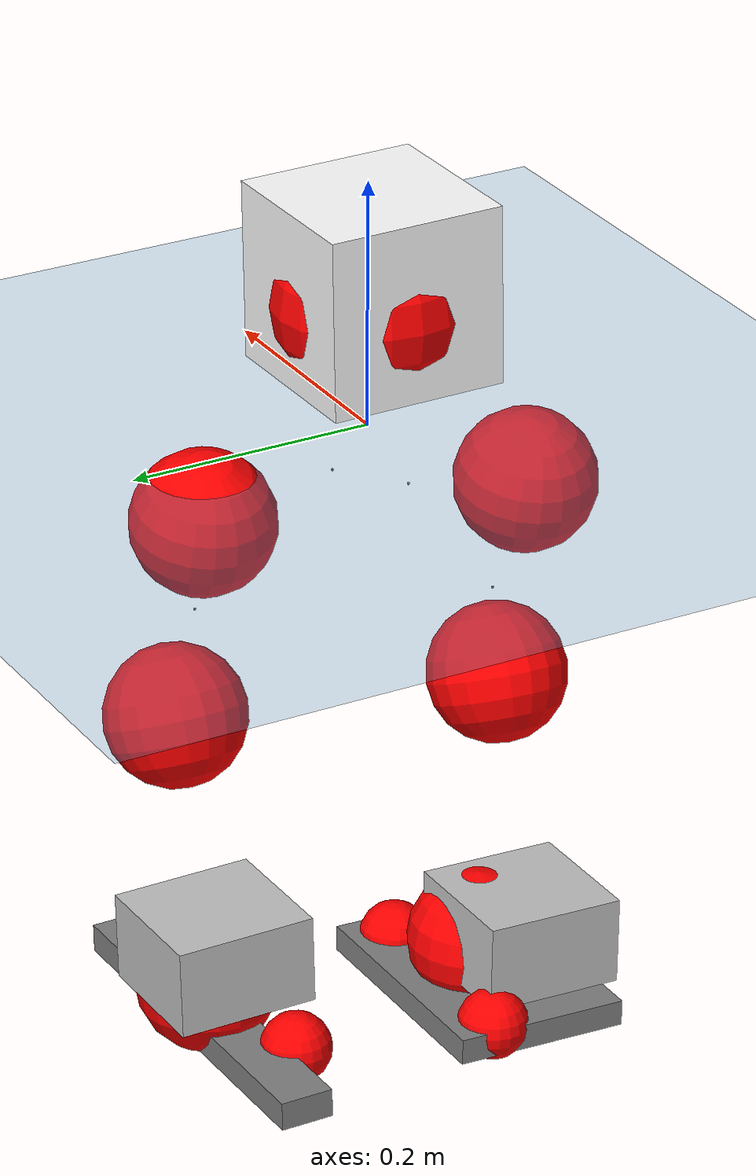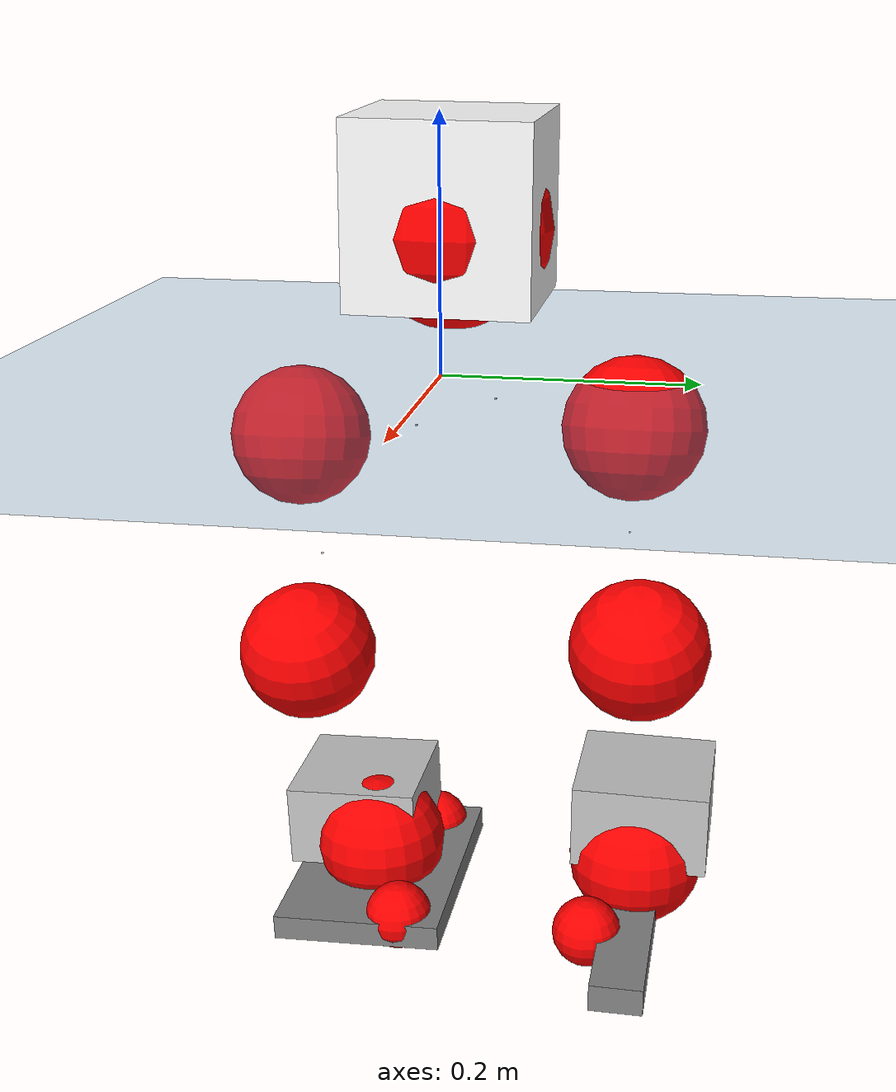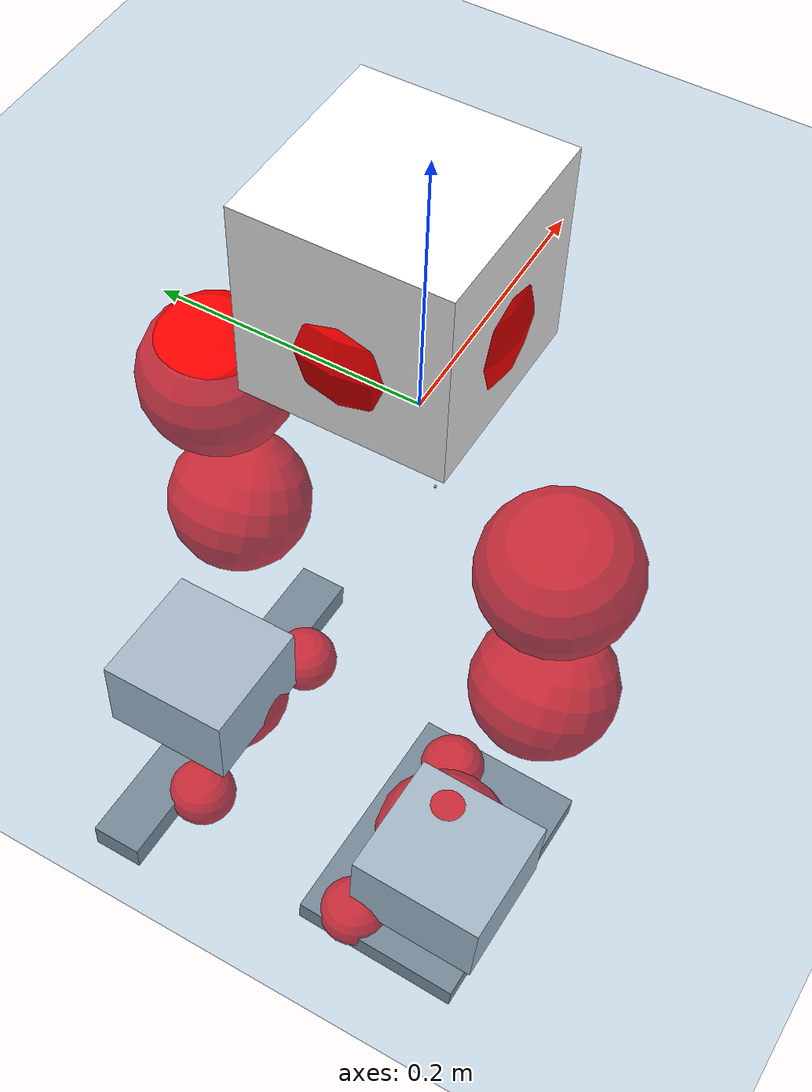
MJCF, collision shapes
<mujoco model="pi_12dof_release_v1">
  <compiler angle="radian" assetdir="assets" balanceinertia="true" inertiafromgeom="false"/>

  <option timestep="0.005" density="1.2" viscosity="2e-05"/>

  <size nkey="1"/>

  <visual>
    <quality shadowsize="8192"/>
    <map shadowclip="0.5"/>
  </visual>

  <default>
    <default class="/">
      <joint armature="0.01" damping="0.01" frictionloss="0.01"/>
      <geom contype="0" conaffinity="0" group="1" solref="-1000 -80"/>
      <site size="0.01 0.005 0.005" group="5"/>
      <general forcelimited="true" biastype="affine" gainprm="20" biasprm="0 -20 -0.5"/>
      <default class="foot">
        <geom size="0.0845 0.036 0.005" type="box" condim="6" group="4" priority="1" friction="0.9 0.2 0.2" solimp="0.015 1 0.005"/>
      </default>
      <default class="reward_collision_sphere">
        <geom group="5" rgba="1 0 0 1"/>
      </default>
    </default>
  </default>

  <asset>
    <texture type="skybox" colorspace="auto" name="//unnamed_texture_0" builtin="gradient" rgb1="0.95 0.95 0.95" rgb2="0.95 0.95 0.95" width="100" height="600"/>
    <texture type="2d" colorspace="auto" name="texplane" builtin="checker" rgb1="0.345 0.575 0.748" rgb2="0.345 0.575 0.748" markrgb="1 1 1" width="512" height="512"/>
    <material name="MatPlane" class="/" texture="texplane" texuniform="true" texrepeat="2 2" specular="0.9"/>
    <mesh name="baselink_1" class="/" file="baselink_1.STL"/>
    <mesh name="r_hip_pitch_link" class="/" file="r_hip_pitch_link.STL"/>
    <mesh name="r_hip_roll_link" class="/" file="r_hip_roll_link.STL"/>
    <mesh name="r_thigh_link" class="/" file="r_thigh_link.STL"/>
    <mesh name="r_calf_link" class="/" file="r_calf_link.STL"/>
    <mesh name="r_ankle_pitch_link" class="/" file="r_ankle_pitch_link.STL"/>
    <mesh name="r_ankle_roll_link" class="/" file="r_ankle_roll_link.STL"/>
    <mesh name="l_hip_pitch_link" class="/" file="l_hip_pitch_link.STL"/>
    <mesh name="l_hip_roll_link" class="/" file="l_hip_roll_link.STL"/>
    <mesh name="l_thigh_link" class="/" file="l_thigh_link.STL"/>
    <mesh name="l_calf_link" class="/" file="l_calf_link.STL"/>
    <mesh name="l_ankle_pitch_link" class="/" file="l_ankle_pitch_link.STL"/>
    <mesh name="l_ankle_roll_link" class="/" file="l_ankle_roll_link.STL"/>
  </asset>

  <worldbody>
    <geom name="floor" class="/" size="100 100 0.125" type="plane" group="0" material="MatPlane"/>
    <light name="toplight_shadow" class="/" pos="0 0 5" dir="0.0990148 0.0990148 -0.990148" type="directional" ambient="0.04 0.04 0.04" diffuse="0.55 0.55 0.55" specular="0.12 0.12 0.12"/>
    <light name="toplight_fill" class="/" pos="0 0 5" dir="0.0990148 0.0990148 -0.990148" type="directional" castshadow="false" ambient="0.04 0.04 0.04" diffuse="0.3 0.3 0.3" specular="0.08 0.08 0.08"/>
    <body name="trunk" pos="-0.0194292 0.00513848 0.0117209" quat="0.99996 -0.00484502 0.00729713 -0.00200557">
      <inertial pos="0.0216214 -0.011493 0.064948" quat="0.679537 0.0328042 -0.00961279 0.732844" mass="6.73851" diaginertia="0.0211591 0.0908407 0.0194971"/>
      <joint name="//unnamed_joint_0" type="free"/>
      <geom name="//unnamed_geom_1" class="/" type="mesh" density="0" rgba="1 1 1 1" mesh="baselink_1"/>
      <geom name="//unnamed_geom_2" class="/" size="0.0712799 0.0712799 0.0712799" pos="0 0 0.115288" type="box" rgba="1 1 1 1"/>
      <geom name="//unnamed_geom_3" class="reward_collision_sphere" size="0.0784079" pos="0 0 0.100877"/>
      <site name="imu" class="/" pos="0.0270452 -0.0632221 -0.0876269" size="0.014256"/>
      <camera name="track" class="/" pos="0 -3.27108 0" quat="0.707107 0.707107 0 0" mode="trackcom"/>
      <camera name="ego_camera" class="/" pos="0.0900115 0 0.259397" quat="-0.5 -0.5 0.5 0.5"/>
      <body name="r_hip_pitch_link" pos="0.000457761 -0.0290742 -0.0584993" quat="0.992344 0.00362301 -0.123374 -0.00425776">
        <inertial pos="-0.00690992 -0.0754454 0.00609552" quat="-0.0173686 0.714467 -0.0540218 0.697364" mass="1.10607" diaginertia="0.000183885 0.000874053 0.000509326"/>
        <joint name="r_hip_pitch_joint" class="/" pos="0 0 0" axis="0.051465 -0.998176 -0.0315588" stiffness="0.044328" range="-1.50719 1.11173" armature="0.0215306" damping="0" frictionloss="0.0035092"/>
        <geom name="//unnamed_geom_4" class="/" type="mesh" density="0" rgba="0.75294 0.75294 0.75294 1" mesh="r_hip_pitch_link"/>
        <geom name="//unnamed_geom_5" class="/" size="0.000712799 0.000712799 0.000712799" type="box" rgba="0.75294 0.75294 0.75294 1"/>
        <body name="r_hip_roll_link" pos="-0.0117591 -0.0983737 -0.0128238" quat="0.999965 0.00782874 0.00277788 0.000192233">
          <inertial pos="-0.0168975 0.0142275 -0.0698487" quat="0.706115 -0.0816487 -0.0852941 0.698184" mass="1.41749" diaginertia="0.000839738 0.00361115 0.000712328"/>
          <joint name="r_hip_roll_joint" class="/" pos="0 0 0" axis="-0.997148 -0.0170291 0.07352" range="0.0576379 0.793819" armature="0.0213903" damping="0.0906832" frictionloss="0.00261715"/>
          <geom name="//unnamed_geom_6" class="/" type="mesh" density="0" rgba="0.75294 0.75294 0.75294 1" mesh="r_hip_roll_link"/>
          <geom name="//unnamed_geom_7" class="/" size="0.000712799 0.000712799 0.000712799" type="box" rgba="0.75294 0.75294 0.75294 1"/>
          <geom name="//unnamed_geom_8" class="reward_collision_sphere" size="0.0570239"/>
          <body name="r_thigh_link" pos="-0.00645758 0.017925 -0.0968627" quat="0.999977 0.00440112 0.00447635 0.00262253">
            <inertial pos="0.0161567 0.00469996 -0.0827187" quat="0.72146 0.690769 -0.0412613 0.0251071" mass="0.305858" diaginertia="0.000272817 0.000689732 0.000239463"/>
            <joint name="r_thigh_joint" class="/" pos="0 0 0" axis="0.000526744 -0.00463095 -0.999989" stiffness="0.0661281" range="0.0143582 0.32921" armature="0.0229128" damping="0" frictionloss="0.0281568"/>
            <geom name="//unnamed_geom_9" class="/" type="mesh" density="0" rgba="0.75294 0.75294 0.75294 1" mesh="r_thigh_link"/>
            <geom name="//unnamed_geom_10" class="/" size="0.000712799 0.000712799 0.000712799" type="box" rgba="0.75294 0.75294 0.75294 1"/>
            <body name="r_calf_link" pos="-0.00639728 -0.013555 -0.0831555" quat="0.948234 0.00536747 0.317482 -0.00525401">
              <inertial pos="-0.012621 0.0152102 -0.0983688" quat="0.996403 -0.0747052 0.039541 0.00598253" mass="2.34681" diaginertia="0.0121108 0.0477677 0.0014777"/>
              <joint name="r_calf_joint" class="/" pos="0 0 0" axis="-0.0317942 -0.996547 -0.0767029" stiffness="0.0838927" range="-2.02864 0.770646" armature="0.0198219" damping="0" frictionloss="0.00332523"/>
              <geom name="//unnamed_geom_11" class="/" type="mesh" density="0" rgba="0.75294 0.75294 0.75294 1" mesh="r_calf_link"/>
              <geom name="//unnamed_geom_12" class="/" size="0.000712799 0.000712799 0.000712799" type="box" rgba="0.75294 0.75294 0.75294 1"/>
              <geom name="//unnamed_geom_13" class="reward_collision_sphere" size="0.0570239"/>
              <body name="r_ankle_pitch_link" pos="-0.00222087 0.0192158 -0.201133" quat="0.979878 0.000615885 -0.199587 -0.00174641">
                <inertial pos="-0.007162 0.021049 0.00566287" quat="0.0287559 0.686142 -0.06076 0.724355" mass="0.485952" diaginertia="0.000941292 0.00334167 0.000680557"/>
                <joint name="r_ankle_pitch_joint" class="/" pos="0 0 0" axis="-0.0878797 -0.995892 0.0218087" range="-1.52826 0.550968" armature="0.0108594" damping="0.0880207" frictionloss="0.00503737"/>
                <geom name="//unnamed_geom_14" class="/" type="mesh" density="0" rgba="0.75294 0.75294 0.75294 1" mesh="r_ankle_pitch_link"/>
                <geom name="//unnamed_geom_15" class="/" size="0.0555983 0.0570239 0.0356399" type="box" rgba="0.75294 0.75294 0.75294 1"/>
                <body name="r_ankle_roll_link" pos="0.0911581 0.0202776 0.0097107" quat="1 0.000414714 3.23531e-05 8.95027e-06">
                  <inertial pos="-0.02582 -0.00463355 -0.0244071" quat="0.574133 0.490776 0.378241 0.535205" mass="1.56189" diaginertia="0.00282966 0.0119226 0.00205407"/>
                  <joint name="r_ankle_roll_joint" class="/" pos="0 0 0" axis="-0.995591 0.0671807 0.0654673" range="0.205844 0.0534557" armature="0.00227275" damping="0.0404947" frictionloss="0.0163974"/>
                  <geom name="//unnamed_geom_16" class="/" type="mesh" density="0" rgba="0.75294 0.75294 0.75294 1" mesh="r_ankle_roll_link"/>
                  <geom name="//unnamed_geom_17" class="/" type="mesh" rgba="0.75294 0.75294 0.75294 1" mesh="r_ankle_roll_link"/>
                  <geom name="right_foot" class="foot" size="0.104475 0.0716471 0.0104983" pos="-0.0612078 0 -0.0634083"/>
                  <geom name="//unnamed_geom_19" class="reward_collision_sphere" size="0.0570239" pos="-0.0600076 0 -0.0288219"/>
                  <geom name="//unnamed_geom_20" class="reward_collision_sphere" size="0.0285119" pos="0.0180023 0.0327108 -0.0576439"/>
                  <geom name="//unnamed_geom_21" class="reward_collision_sphere" size="0.0285119" pos="-0.144018 0.0327108 -0.0576439"/>
                  <site name="right_foot" class="foot" pos="-0.0612078 0 -0.0634083" size="0.014256"/>
                </body>
              </body>
            </body>
          </body>
        </body>
      </body>
      <body name="l_hip_pitch_link" pos="0.00316373 0.0351741 -0.0324287" quat="0.992236 -0.00133864 -0.124358 -0.00130088">
        <inertial pos="-0.00938508 0.070527 0.0146761" quat="-0.112348 0.744801 0.0450207 0.656219" mass="0.785742" diaginertia="0.000268108 0.0011634 0.000439985"/>
        <joint name="l_hip_pitch_joint" class="/" pos="0 0 0" axis="-0.0322601 0.9954 0.0902152" stiffness="0.0520747" range="-1.44778 1.71521" armature="0.0157849" damping="0" frictionloss="0.0127232"/>
        <geom name="//unnamed_geom_22" class="/" type="mesh" density="0" rgba="0.75294 0.75294 0.75294 1" mesh="l_hip_pitch_link"/>
        <geom name="//unnamed_geom_23" class="/" size="0.000712799 0.000712799 0.000712799" type="box" rgba="0.75294 0.75294 0.75294 1"/>
        <body name="l_hip_roll_link" pos="-0.00353415 0.109809 -0.0172514" quat="0.999995 0.0021408 0.00219145 -0.000872889">
          <inertial pos="-0.00378359 0.00234043 -0.0947601" quat="0.694396 -0.125531 -0.0764352 0.704424" mass="0.768557" diaginertia="0.000696298 0.00263322 0.00058601"/>
          <joint name="l_hip_roll_joint" class="/" pos="0 0 0" axis="-0.998778 -0.0176956 0.0461498" stiffness="0.0985898" range="-0.374205 -0.199121" armature="0.022475" damping="0" frictionloss="0.0213863"/>
          <geom name="//unnamed_geom_24" class="/" type="mesh" density="0" rgba="0.75294 0.75294 0.75294 1" mesh="l_hip_roll_link"/>
          <geom name="//unnamed_geom_25" class="/" size="0.000712799 0.000712799 0.000712799" type="box" rgba="0.75294 0.75294 0.75294 1"/>
          <geom name="//unnamed_geom_26" class="reward_collision_sphere" size="0.0570239"/>
          <body name="l_thigh_link" pos="-0.00280013 0.000780593 -0.0817584" quat="0.999993 0.00158356 -0.00192222 0.00295797">
            <inertial pos="0.010053 -0.0208864 -0.0736497" quat="0.674286 0.735857 0.0619247 0.00416946" mass="0.288659" diaginertia="0.00031621 0.000913486 0.000391465"/>
            <joint name="l_thigh_joint" class="/" pos="0 0 0" axis="-0.0244059 0.0439421 -0.998736" range="-0.695532 0.00697696" armature="0.00612722" damping="0.0985443" frictionloss="0.00544307"/>
            <geom name="//unnamed_geom_27" class="/" type="mesh" density="0" rgba="0.75294 0.75294 0.75294 1" mesh="l_thigh_link"/>
            <geom name="//unnamed_geom_28" class="/" size="0.000712799 0.000712799 0.000712799" type="box" rgba="0.75294 0.75294 0.75294 1"/>
            <body name="l_calf_link" pos="-0.00996003 0.0122416 -0.0941782" quat="0.945031 -0.00143921 0.326952 -0.0042179">
              <inertial pos="-0.0184664 -0.00876234 -0.081776" quat="0.997013 0.0537938 -0.0374439 0.0408516" mass="2.25415" diaginertia="0.00891042 0.0419243 0.0011279"/>
              <joint name="l_calf_joint" class="/" pos="0 0 0" axis="0.0585504 0.998048 -0.0217471" stiffness="0.0425351" range="-0.520043 1.91444" armature="0.00814517" damping="0" frictionloss="0.0260799"/>
              <geom name="//unnamed_geom_29" class="/" type="mesh" density="0" rgba="0.75294 0.75294 0.75294 1" mesh="l_calf_link"/>
              <geom name="//unnamed_geom_30" class="/" size="0.000712799 0.000712799 0.000712799" type="box" rgba="0.75294 0.75294 0.75294 1"/>
              <geom name="//unnamed_geom_31" class="reward_collision_sphere" size="0.0570239"/>
              <body name="l_ankle_pitch_link" pos="0.00868344 0.00518489 -0.182891" quat="0.980002 -0.000596067 -0.198989 -6.9157e-05">
                <inertial pos="0.0119263 -0.00414199 0.000949604" quat="-0.00496102 0.69843 -0.00816817 0.715614" mass="0.617418" diaginertia="0.000835524 0.00214737 0.000724058"/>
                <joint name="l_ankle_pitch_joint" class="/" pos="0 0 0" axis="-0.0121997 0.99991 -0.0055691" stiffness="0.0650647" range="-0.598517 1.19738" armature="0.0150759" damping="0.0459743" frictionloss="0.00620097"/>
                <geom name="//unnamed_geom_32" class="/" type="mesh" density="0" rgba="0.75294 0.75294 0.75294 1" mesh="l_ankle_pitch_link"/>
                <geom name="//unnamed_geom_33" class="/" size="0.0555983 0.0570239 0.0356399" type="box" rgba="0.75294 0.75294 0.75294 1"/>
                <body name="l_ankle_roll_link" pos="0.0836188 -0.00406898 -0.0118835" quat="0.999997 0.00215035 0.000950234 0.00101832">
                  <inertial pos="-0.0136954 -0.00591663 -0.0172337" quat="0.511631 0.439073 0.472982 0.567218" mass="1.64267" diaginertia="0.00251643 0.0117887 0.00144321"/>
                  <joint name="l_ankle_roll_joint" class="/" pos="0 0 0" axis="-0.995752 -0.086806 0.0306922" stiffness="0.0841144" range="-0.118383 -0.0779538" armature="0.0216188" damping="0" frictionloss="0.0219238"/>
                  <geom name="//unnamed_geom_34" class="/" type="mesh" density="0" rgba="0.75294 0.75294 0.75294 1" mesh="l_ankle_roll_link"/>
                  <geom name="//unnamed_geom_35" class="/" type="mesh" rgba="0.75294 0.75294 0.75294 1" mesh="l_ankle_roll_link"/>
                  <geom name="left_foot" class="foot" size="0.162021 0.0215451 0.0115476" pos="-0.0612078 0 -0.0634083"/>
                  <geom name="//unnamed_geom_37" class="reward_collision_sphere" size="0.0570239" pos="-0.0600076 0 -0.0288219"/>
                  <geom name="//unnamed_geom_38" class="reward_collision_sphere" size="0.0285119" pos="0.0180023 -0.0327108 -0.0576439"/>
                  <geom name="//unnamed_geom_39" class="reward_collision_sphere" size="0.0285119" pos="-0.144018 -0.0327108 -0.0576439"/>
                  <site name="left_foot" class="foot" pos="-0.0612078 0 -0.0634083" size="0.014256"/>
                </body>
              </body>
            </body>
          </body>
        </body>
      </body>
    </body>
  </worldbody>

  <contact>
    <pair class="/" geom1="floor" geom2="right_foot" name="//unnamed_contact_1"/>
    <pair class="/" geom1="floor" geom2="left_foot" name="//unnamed_contact_0"/>
  </contact>

  <actuator>
    <general name="r_hip_pitch_joint" class="/" joint="r_hip_pitch_joint" forcerange="-33.9965 33.9965" gainprm="25.4928" biasprm="0 -25.4928 -0.518333"/>
    <general name="r_hip_roll_joint" class="/" joint="r_hip_roll_joint" forcerange="-14.9393 14.9393" gainprm="25.4928" biasprm="0 -25.4928 -0.518333"/>
    <general name="r_thigh_joint" class="/" joint="r_thigh_joint" forcerange="-37.9252 37.9252" gainprm="25.4928" biasprm="0 -25.4928 -0.518333"/>
    <general name="r_calf_joint" class="/" joint="r_calf_joint" forcerange="-8.4308 8.4308" gainprm="25.4928" biasprm="0 -25.4928 -0.518333"/>
    <general name="r_ankle_pitch_joint" class="/" joint="r_ankle_pitch_joint" forcerange="-21.4309 21.4309" gainprm="25.4928" biasprm="0 -25.4928 -0.518333"/>
    <general name="r_ankle_roll_joint" class="/" joint="r_ankle_roll_joint" forcerange="-49.6218 49.6218" gainprm="25.4928" biasprm="0 -25.4928 -0.518333"/>
    <general name="l_hip_pitch_joint" class="/" joint="l_hip_pitch_joint" forcerange="-31.6618 31.6618" gainprm="25.4928" biasprm="0 -25.4928 -0.518333"/>
    <general name="l_hip_roll_joint" class="/" joint="l_hip_roll_joint" forcerange="-43.9298 43.9298" gainprm="25.4928" biasprm="0 -25.4928 -0.518333"/>
    <general name="l_thigh_joint" class="/" joint="l_thigh_joint" forcerange="-37.0339 37.0339" gainprm="25.4928" biasprm="0 -25.4928 -0.518333"/>
    <general name="l_calf_joint" class="/" joint="l_calf_joint" forcerange="-34.911 34.911" gainprm="25.4928" biasprm="0 -25.4928 -0.518333"/>
    <general name="l_ankle_pitch_joint" class="/" joint="l_ankle_pitch_joint" forcerange="-16.0728 16.0728" gainprm="25.4928" biasprm="0 -25.4928 -0.518333"/>
    <general name="l_ankle_roll_joint" class="/" joint="l_ankle_roll_joint" forcerange="-33.2783 33.2783" gainprm="25.4928" biasprm="0 -25.4928 -0.518333"/>
  </actuator>

  <sensor>
    <gyro site="imu" name="imu_angular_velocity"/>
    <velocimeter site="imu" name="imu_linear_velocity"/>
    <framelinvel objtype="site" objname="left_foot" name="left_foot_global_linear_velocity"/>
    <framelinvel objtype="site" objname="right_foot" name="right_foot_global_linear_velocity"/>
  </sensor>

  <keyframe>
    <key name="home" qpos="0 0 0.291 1 0 0 0 0.4 0 0 -0.8 0.4 0 -0.4 0 0 0.8 -0.4 0"/>
  </keyframe>
</mujoco>
